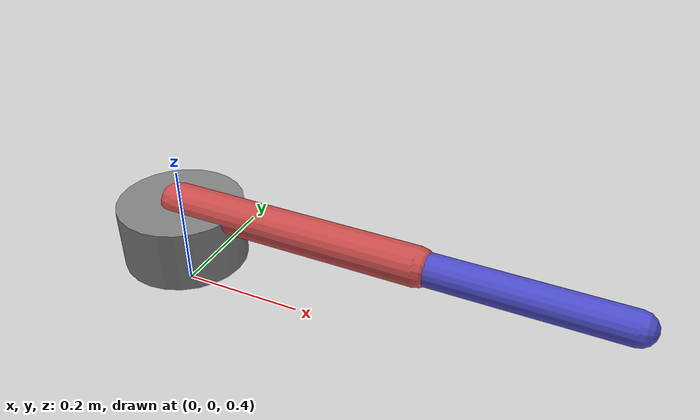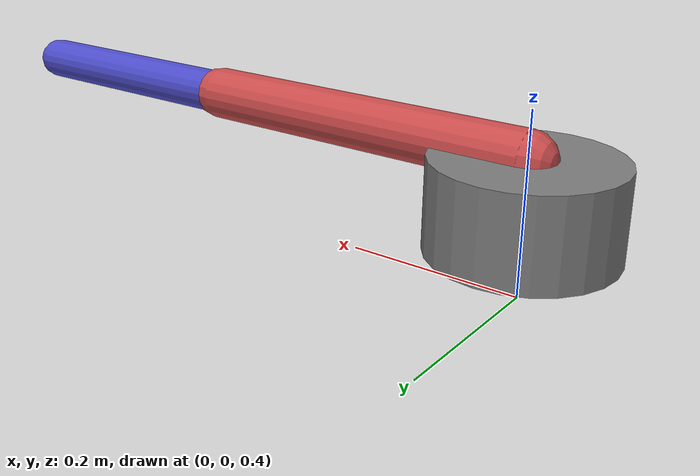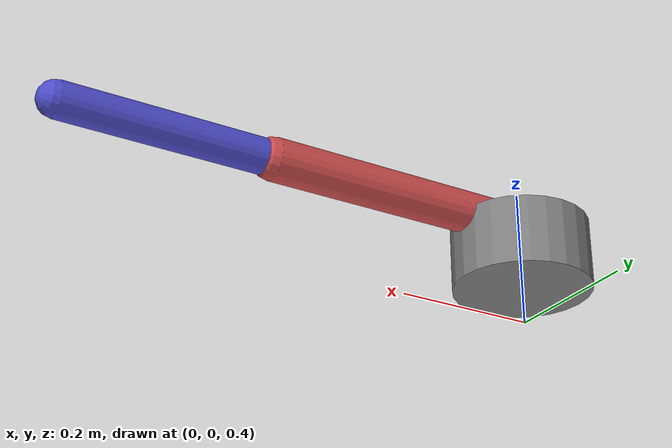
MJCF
<mujoco model="planar_arm">
  <option gravity="0 0 -9.81" timestep="0.002"/>
  <compiler inertiafromgeom="true"/>

  <worldbody>
    <light name="top" pos="0 0 2"/>
    <camera name="top_down" pos="0 0 2" xyaxes="1 0 0 0 1 0"/>

    <!-- Base (fixed to world, elevated to see arm motion) -->
    <body name="base" pos="0 0 0.5">
      <geom name="base_geom" type="cylinder" size="0.1 0.05" rgba="0.5 0.5 0.5 1"/>

      <!-- Link 1: shoulder joint (rotates in XY plane around Z axis) -->
      <body name="link1" pos="0 0 0.05">
        <joint name="shoulder" type="hinge" axis="0 0 1" damping="0.1"/>
        <geom name="link1_geom" type="capsule" fromto="0 0 0 0.4 0 0"
              size="0.03" rgba="0.8 0.3 0.3 1" mass="1.0"/>

        <!-- Link 2: elbow joint -->
        <body name="link2" pos="0.4 0 0">
          <joint name="elbow" type="hinge" axis="0 0 1" damping="0.1"/>
          <geom name="link2_geom" type="capsule" fromto="0 0 0 0.3 0 0"
                size="0.025" rgba="0.3 0.3 0.8 1" mass="0.5"/>
          <site name="end_effector" pos="0.3 0 0" size="0.02"/>
        </body>
      </body>
    </body>
  </worldbody>

  <sensor>
    <jointpos name="shoulder_pos" joint="shoulder"/>
    <jointpos name="elbow_pos" joint="elbow"/>
    <framepos name="ee_pos" objtype="site" objname="end_effector"/>
  </sensor>
</mujoco>
